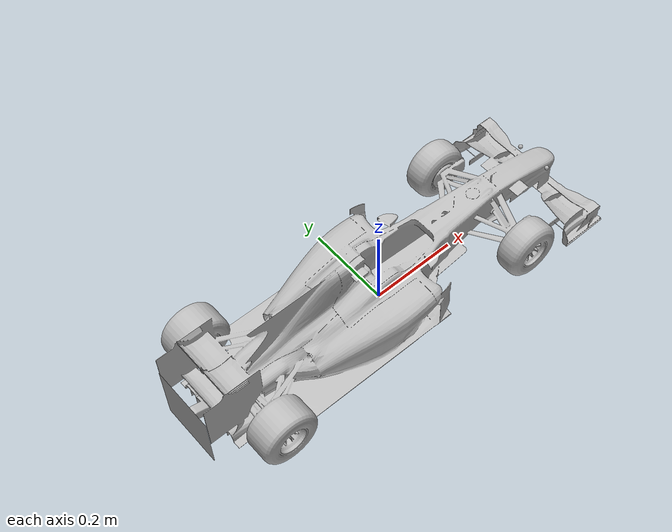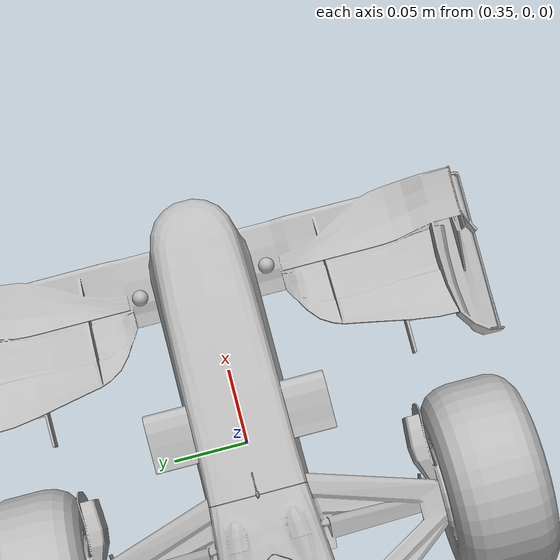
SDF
<?xml version="1.0"?>
<sdf version="1.6">
<model name="f1_renault_dual_cam">
  <pose>0 0 0 0 0 0</pose>
  <static>false</static>

    <include merge="true">
        <uri>model://f1_renault</uri>
    </include>

    <link name='camera_left_link'>
      <pose>0.45000 0.040000 0.1000000 0.000000 -0.000000 0.0000000</pose>
      <inertial>
        <mass>2</mass>
        <inertia>
          <ixx>1.000000</ixx>
          <ixy>0.000000</ixy>
          <ixz>0.000000</ixz>
          <iyy>1.000000</iyy>
          <iyz>0.000000</iyz>
          <izz>1.000000</izz>
        </inertia>
      </inertial>
      <sensor name='cam_f1_left' type='camera'>
        <pose>0.000000 0.000000 0.000000 0.000000 0.00000 0.00000</pose>
        <update_rate>20.000000</update_rate>
        <camera name='cleft'>
          <horizontal_fov>1.570000</horizontal_fov>
          <image>
            <width>640</width>
            <height>480</height>
            <format>R8G8B8</format>
          </image>
          <clip>
            <near>0.100000</near>
            <far>15.000000</far>
          </clip>
        </camera>
        <plugin name="camera_controller_left" filename="libgazebo_ros_camera.so">
          <alwaysOn>true</alwaysOn>
          <updateRate>0.0</updateRate>
          <cameraName>F1ROS/cameraL</cameraName>
          <imageTopicName>image_raw</imageTopicName>
          <cameraInfoTopicName>camera_info</cameraInfoTopicName>
          <frameName>camera_top_body_left</frameName>
          <hackBaseline>0.07</hackBaseline>
          <distortionK1>0.0</distortionK1>
          <distortionK2>0.0</distortionK2>
          <distortionK3>0.0</distortionK3>
          <distortionT1>0.0</distortionT1>
          <distortionT2>0.0</distortionT2>
        </plugin>
      </sensor>
      <visual name='visual'>
        <geometry>
          <sphere>
            <radius>.005</radius>
          </sphere>
        </geometry>
      </visual>
      <collision name='collision'>
        <geometry>
          <box>
            <size>0.100000 0.100000 0.100000</size>
          </box>
        </geometry>
        <surface>
          <friction>
            <ode>
              <mu>100000.000000</mu>
              <mu2>100000.000000</mu2>
              <slip1>0.000000</slip1>
              <slip2>0.000000</slip2>
            </ode>
          </friction>
        </surface>
        <max_contacts>10</max_contacts>
      </collision>
      <velocity_decay>
        <linear>0.000000</linear>
        <angular>0.000000</angular>
      </velocity_decay>
      <self_collide>0</self_collide>
      <kinematic>0</kinematic>
      <gravity>1</gravity>
    </link>

    <link name='camera_right_link'>
      <pose>0.45000 -0.040000 0.1000000 0.000000 -0.000000 0.0000000</pose>
      <inertial>
        <mass>2</mass>
        <inertia>
          <ixx>1.000000</ixx>
          <ixy>0.000000</ixy>
          <ixz>0.000000</ixz>
          <iyy>1.000000</iyy>
          <iyz>0.000000</iyz>
          <izz>1.000000</izz>
        </inertia>
      </inertial>
      <sensor name='cam_f1_right' type='camera'>
        <pose>0.000000 0.000000 0.000000 0.000000 0.00000 0.00000</pose>
        <update_rate>20.000000</update_rate>
        <camera name='cright'>
          <horizontal_fov>1.570000</horizontal_fov>
          <image>
            <width>640</width>
            <height>480</height>
            <format>R8G8B8</format>
          </image>
          <clip>
            <near>0.100000</near>
            <far>15.000000</far>
          </clip>
        </camera>
        <plugin name="camera_controller_right" filename="libgazebo_ros_camera.so">
          <alwaysOn>true</alwaysOn>
          <updateRate>0.0</updateRate>
          <cameraName>F1ROS/cameraR</cameraName>
          <imageTopicName>image_raw</imageTopicName>
          <cameraInfoTopicName>camera_info</cameraInfoTopicName>
          <frameName>camera_top_body_right</frameName>
          <hackBaseline>0.07</hackBaseline>
          <distortionK1>0.0</distortionK1>
          <distortionK2>0.0</distortionK2>
          <distortionK3>0.0</distortionK3>
          <distortionT1>0.0</distortionT1>
          <distortionT2>0.0</distortionT2>
        </plugin>
      </sensor>
      <visual name='visual'>
        <geometry>
          <sphere>
            <radius>.005</radius>
          </sphere>
        </geometry>
      </visual>
      <collision name='collision'>
        <geometry>
          <box>
            <size>0.100000 0.100000 0.100000</size>
          </box>
        </geometry>
        <surface>
          <friction>
            <ode>
              <mu>100000.000000</mu>
              <mu2>100000.000000</mu2>
              <slip1>0.000000</slip1>
              <slip2>0.000000</slip2>
            </ode>
          </friction>
        </surface>
        <max_contacts>10</max_contacts>
      </collision>
      <velocity_decay>
        <linear>0.000000</linear>
        <angular>0.000000</angular>
      </velocity_decay>
      <self_collide>0</self_collide>
      <kinematic>0</kinematic>
      <gravity>1</gravity>
    </link>

    <joint type="fixed" name="camera_left_joint">
      <pose>0 0 0 0 0 0</pose>
      <child>camera_left_link</child>
      <parent>f1_renault::f1_link</parent>
      <axis>
        <xyz>0 0 0</xyz>
      </axis>
    </joint>

    <joint type="fixed" name="camera_right_joint">
      <pose>0 0 0 0 0 0</pose>
      <child>camera_right_link</child>
      <parent>f1_renault::f1_link</parent>
      <axis>
        <xyz>0 0 0</xyz>
      </axis>
    </joint>

  </model>
</sdf>

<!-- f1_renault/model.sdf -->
<sdf version="1.6">
  <model name="f1_renault">
    <pose>0 0 0 0 0 0</pose>
    <static>false</static>
    <link name="f1_link">
      <pose>0 0 0 0 0 0</pose>
      <inertial>
        <mass>10</mass>
        <inertia>
          <ixx>1</ixx>
          <ixy>0.0</ixy>
          <iyy>1</iyy>
          <ixz>0.0</ixz>
          <iyz>0.0</iyz>
          <izz>1.0</izz>
        </inertia>
      </inertial>
      <collision name="collision">
        <geometry>
          <mesh>
            <uri>model://f1_renault/Renault/Car.obj</uri>
            <scale>0.2 0.2 0.2</scale>
          </mesh>
        </geometry>
      </collision>
      <visual name="visual">
        <geometry>
          <mesh>
            <uri>model://f1_renault/Renault/Car.obj</uri>
            <scale>0.2 0.2 0.2</scale>
          </mesh>
        </geometry>
      </visual>
    </link>

    <plugin name="object_controller" filename="libgazebo_ros_planar_move.so">
      <cmdTimeout>-1.0</cmdTimeout>
      <robotNamespace>F1ROS</robotNamespace>
      <commandTopic>cmd_vel</commandTopic>
      <odometryTopic>odom</odometryTopic>
      <odometryFrame>odom</odometryFrame>
      <odometryRate>20.0</odometryRate>
      <robotBaseFrame>xf1</robotBaseFrame>
    </plugin>
  </model>
</sdf>
